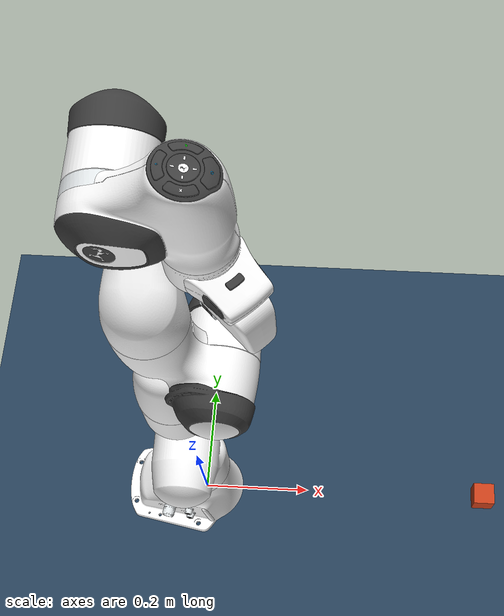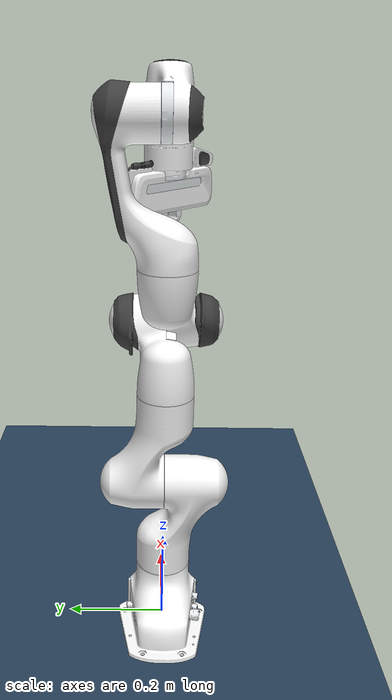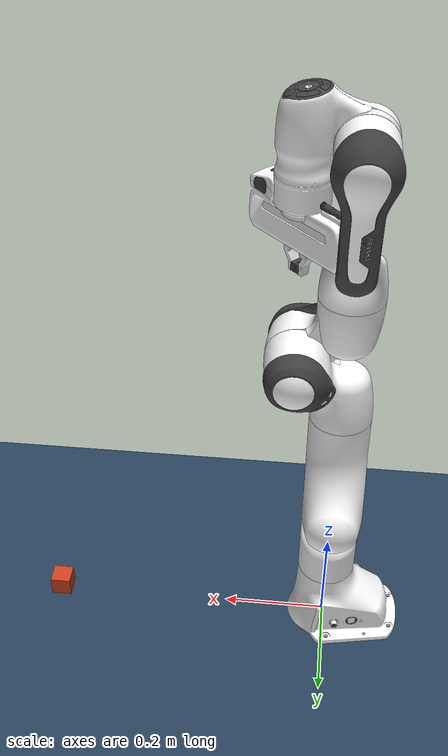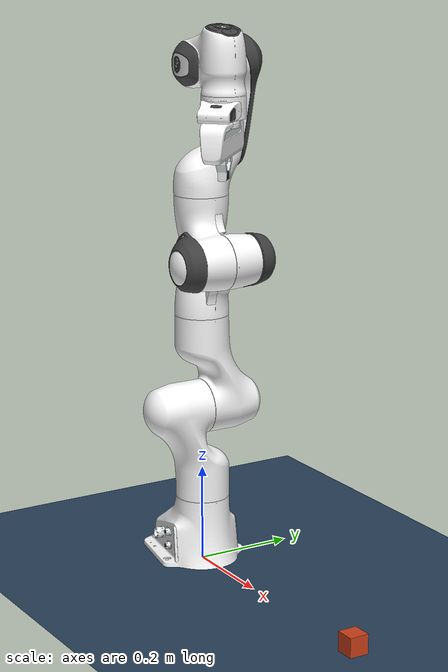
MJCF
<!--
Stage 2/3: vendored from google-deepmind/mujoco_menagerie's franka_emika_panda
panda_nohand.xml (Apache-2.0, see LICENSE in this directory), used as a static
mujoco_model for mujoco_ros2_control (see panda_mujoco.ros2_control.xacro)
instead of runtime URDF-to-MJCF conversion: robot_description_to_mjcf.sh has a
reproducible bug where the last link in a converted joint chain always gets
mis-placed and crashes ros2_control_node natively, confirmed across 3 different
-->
<mujoco model="panda">
  <compiler angle="radian" meshdir="assets" autolimits="true"/>

  <option integrator="implicitfast" impratio="10"/>

  <statistic center="0.3 0 0.3" extent="1.2"/>

  <visual>
    <headlight diffuse="0.6 0.6 0.6" ambient="0.1 0.1 0.1" specular="0 0 0"/>
    <rgba haze="0.15 0.25 0.35 1"/>
    <global azimuth="120" elevation="-20"/>
  </visual>

  <default>
    <default class="panda">
      <material specular="0.5" shininess="0.25"/>
      <joint armature="0.1" damping="1" axis="0 0 1" range="-2.8973 2.8973"/>
      <general dyntype="none" biastype="affine" ctrlrange="-2.8973 2.8973" forcerange="-87 87"/>
      <default class="finger">
        <joint axis="0 1 0" type="slide" range="0 0.04"/>
      </default>

      <default class="panda/visual">
        <geom type="mesh" contype="0" conaffinity="0" group="2"/>
      </default>
      <default class="panda/collision">
        <geom type="mesh" group="3" conaffinity="0"/>
        <default class="panda/fingertip_pad_collision_1">
          <geom type="box" size="0.0085 0.004 0.0085" pos="0 0.0055 0.0445"/>
        </default>
        <default class="panda/fingertip_pad_collision_2">
          <geom type="box" size="0.003 0.002 0.003" pos="0.0055 0.002 0.05"/>
        </default>
        <default class="panda/fingertip_pad_collision_3">
          <geom type="box" size="0.003 0.002 0.003" pos="-0.0055 0.002 0.05"/>
        </default>
        <default class="panda/fingertip_pad_collision_4">
          <geom type="box" size="0.003 0.002 0.0035" pos="0.0055 0.002 0.0395"/>
        </default>
        <default class="panda/fingertip_pad_collision_5">
          <geom type="box" size="0.003 0.002 0.0035" pos="-0.0055 0.002 0.0395"/>
        </default>
      </default>
      <site size="0.001" rgba="0.5 0.5 0.5 0.3" group="4"/>
    </default>
  </default>

  <asset>
    <texture type="skybox" builtin="gradient" rgb1="0.3 0.5 0.7" rgb2="0 0 0" width="512" height="3072"/>
    <texture type="2d" name="groundplane" builtin="checker" mark="edge" rgb1="0.2 0.3 0.4" rgb2="0.1 0.2 0.3"
      markrgb="0.8 0.8 0.8" width="300" height="300"/>
    <material name="groundplane" texture="groundplane" texuniform="true" texrepeat="5 5"/>

    <material class="panda" name="white" rgba="1 1 1 1"/>
    <material class="panda" name="off_white" rgba="0.901961 0.921569 0.929412 1"/>
    <material class="panda" name="dark_grey" rgba="0.25 0.25 0.25 1"/>
    <material class="panda" name="green" rgba="0 1 0 1"/>
    <material class="panda" name="light_blue" rgba="0.039216 0.541176 0.780392 1"/>

    <!-- Collision meshes -->
    <mesh name="link0_c" file="link0.stl"/>
    <mesh name="link1_c" file="link1.stl"/>
    <mesh name="link2_c" file="link2.stl"/>
    <mesh name="link3_c" file="link3.stl"/>
    <mesh name="link4_c" file="link4.stl"/>
    <mesh name="link5_c0" file="link5_collision_0.obj"/>
    <mesh name="link5_c1" file="link5_collision_1.obj"/>
    <mesh name="link5_c2" file="link5_collision_2.obj"/>
    <mesh name="link6_c" file="link6.stl"/>
    <mesh name="link7_c" file="link7.stl"/>
    <mesh name="hand_c" file="hand.stl"/>

    <!-- Visual meshes -->
    <mesh file="link0_0.obj"/>
    <mesh file="link0_1.obj"/>
    <mesh file="link0_2.obj"/>
    <mesh file="link0_3.obj"/>
    <mesh file="link0_4.obj"/>
    <mesh file="link0_5.obj"/>
    <mesh file="link0_7.obj"/>
    <mesh file="link0_8.obj"/>
    <mesh file="link0_9.obj"/>
    <mesh file="link0_10.obj"/>
    <mesh file="link0_11.obj"/>
    <mesh file="link1.obj"/>
    <mesh file="link2.obj"/>
    <mesh file="link3_0.obj"/>
    <mesh file="link3_1.obj"/>
    <mesh file="link3_2.obj"/>
    <mesh file="link3_3.obj"/>
    <mesh file="link4_0.obj"/>
    <mesh file="link4_1.obj"/>
    <mesh file="link4_2.obj"/>
    <mesh file="link4_3.obj"/>
    <mesh file="link5_0.obj"/>
    <mesh file="link5_1.obj"/>
    <mesh file="link5_2.obj"/>
    <mesh file="link6_0.obj"/>
    <mesh file="link6_1.obj"/>
    <mesh file="link6_2.obj"/>
    <mesh file="link6_3.obj"/>
    <mesh file="link6_4.obj"/>
    <mesh file="link6_5.obj"/>
    <mesh file="link6_6.obj"/>
    <mesh file="link6_7.obj"/>
    <mesh file="link6_8.obj"/>
    <mesh file="link6_9.obj"/>
    <mesh file="link6_10.obj"/>
    <mesh file="link6_11.obj"/>
    <mesh file="link6_12.obj"/>
    <mesh file="link6_13.obj"/>
    <mesh file="link6_14.obj"/>
    <mesh file="link6_15.obj"/>
    <mesh file="link6_16.obj"/>
    <mesh file="link7_0.obj"/>
    <mesh file="link7_1.obj"/>
    <mesh file="link7_2.obj"/>
    <mesh file="link7_3.obj"/>
    <mesh file="link7_4.obj"/>
    <mesh file="link7_5.obj"/>
    <mesh file="link7_6.obj"/>
    <mesh file="link7_7.obj"/>

    <mesh file="hand_0.obj"/>
    <mesh file="hand_1.obj"/>
    <mesh file="hand_2.obj"/>
    <mesh file="hand_3.obj"/>
    <mesh file="hand_4.obj"/>

    <mesh file="finger_0.obj"/>
    <mesh file="finger_1.obj"/>
  </asset>

  <worldbody>
    <light name="top" pos="0 0 2" mode="trackcom"/>
    <light name="scene" pos="0 0 1.5" dir="0 0 -1" directional="true"/>
    <geom name="floor" type="plane" size="0 0 0.05" material="groundplane"/>
    <body name="link0" childclass="panda">
      <inertial mass="0.629769" pos="-0.041018 -0.00014 0.049974"
        fullinertia="0.00315 0.00388 0.004285 8.2904e-7 0.00015 8.2299e-6"/>
      <geom mesh="link0_0" material="off_white" class="panda/visual"/>
      <geom mesh="link0_1" material="dark_grey" class="panda/visual"/>
      <geom mesh="link0_2" material="off_white" class="panda/visual"/>
      <geom mesh="link0_3" material="dark_grey" class="panda/visual"/>
      <geom mesh="link0_4" material="off_white" class="panda/visual"/>
      <geom mesh="link0_5" material="dark_grey" class="panda/visual"/>
      <geom mesh="link0_7" material="white" class="panda/visual"/>
      <geom mesh="link0_8" material="white" class="panda/visual"/>
      <geom mesh="link0_9" material="dark_grey" class="panda/visual"/>
      <geom mesh="link0_10" material="off_white" class="panda/visual"/>
      <geom mesh="link0_11" material="white" class="panda/visual"/>
      <geom mesh="link0_c" class="panda/collision"/>
      <body name="link1" pos="0 0 0.333">
        <inertial mass="4.970684" pos="0.003875 0.002081 -0.04762"
          fullinertia="0.70337 0.70661 0.0091170 -0.00013900 0.0067720 0.019169"/>
        <joint name="panda_joint1"/>
        <geom material="white" mesh="link1" class="panda/visual"/>
        <geom mesh="link1_c" class="panda/collision"/>
        <body name="link2" quat="1 -1 0 0">
          <inertial mass="0.646926" pos="-0.003141 -0.02872 0.003495"
            fullinertia="0.0079620 2.8110e-2 2.5995e-2 -3.925e-3 1.0254e-2 7.04e-4"/>
          <joint name="panda_joint2" range="-1.7628 1.7628"/>
          <geom material="white" mesh="link2" class="panda/visual"/>
          <geom mesh="link2_c" class="panda/collision"/>
          <body name="link3" pos="0 -0.316 0" quat="1 1 0 0">
            <joint name="panda_joint3"/>
            <inertial mass="3.228604" pos="2.7518e-2 3.9252e-2 -6.6502e-2"
              fullinertia="3.7242e-2 3.6155e-2 1.083e-2 -4.761e-3 -1.1396e-2 -1.2805e-2"/>
            <geom mesh="link3_0" material="white" class="panda/visual"/>
            <geom mesh="link3_1" material="white" class="panda/visual"/>
            <geom mesh="link3_2" material="white" class="panda/visual"/>
            <geom mesh="link3_3" material="dark_grey" class="panda/visual"/>
            <geom mesh="link3_c" class="panda/collision"/>
            <body name="link4" pos="0.0825 0 0" quat="1 1 0 0">
              <inertial mass="3.587895" pos="-5.317e-2 1.04419e-1 2.7454e-2"
                fullinertia="2.5853e-2 1.9552e-2 2.8323e-2 7.796e-3 -1.332e-3 8.641e-3"/>
              <joint name="panda_joint4" range="-3.0718 -0.0698"/>
              <geom mesh="link4_0" material="white" class="panda/visual"/>
              <geom mesh="link4_1" material="white" class="panda/visual"/>
              <geom mesh="link4_2" material="dark_grey" class="panda/visual"/>
              <geom mesh="link4_3" material="white" class="panda/visual"/>
              <geom mesh="link4_c" class="panda/collision"/>
              <body name="link5" pos="-0.0825 0.384 0" quat="1 -1 0 0">
                <inertial mass="1.225946" pos="-1.1953e-2 4.1065e-2 -3.8437e-2"
                  fullinertia="3.5549e-2 2.9474e-2 8.627e-3 -2.117e-3 -4.037e-3 2.29e-4"/>
                <joint name="panda_joint5"/>
                <geom mesh="link5_0" material="dark_grey" class="panda/visual"/>
                <geom mesh="link5_1" material="white" class="panda/visual"/>
                <geom mesh="link5_2" material="white" class="panda/visual"/>
                <geom mesh="link5_c0" class="panda/collision"/>
                <geom mesh="link5_c1" class="panda/collision"/>
                <geom mesh="link5_c2" class="panda/collision"/>
                <body name="link6" quat="1 1 0 0">
                  <inertial mass="1.666555" pos="6.0149e-2 -1.4117e-2 -1.0517e-2"
                    fullinertia="1.964e-3 4.354e-3 5.433e-3 1.09e-4 -1.158e-3 3.41e-4"/>
                  <joint name="panda_joint6" range="-0.0175 3.7525"/>
                  <geom mesh="link6_0" material="off_white" class="panda/visual"/>
                  <geom mesh="link6_1" material="white" class="panda/visual"/>
                  <geom mesh="link6_2" material="dark_grey" class="panda/visual"/>
                  <geom mesh="link6_3" material="white" class="panda/visual"/>
                  <geom mesh="link6_4" material="white" class="panda/visual"/>
                  <geom mesh="link6_5" material="white" class="panda/visual"/>
                  <geom mesh="link6_6" material="white" class="panda/visual"/>
                  <geom mesh="link6_7" material="light_blue" class="panda/visual"/>
                  <geom mesh="link6_8" material="light_blue" class="panda/visual"/>
                  <geom mesh="link6_9" material="dark_grey" class="panda/visual"/>
                  <geom mesh="link6_10" material="dark_grey" class="panda/visual"/>
                  <geom mesh="link6_11" material="white" class="panda/visual"/>
                  <geom mesh="link6_12" material="green" class="panda/visual"/>
                  <geom mesh="link6_13" material="white" class="panda/visual"/>
                  <geom mesh="link6_14" material="dark_grey" class="panda/visual"/>
                  <geom mesh="link6_15" material="dark_grey" class="panda/visual"/>
                  <geom mesh="link6_16" material="white" class="panda/visual"/>
                  <geom mesh="link6_c" class="panda/collision"/>
                  <body name="link7" pos="0.088 0 0" quat="1 1 0 0">
                    <inertial mass="7.35522e-01" pos="1.0517e-2 -4.252e-3 6.1597e-2"
                      fullinertia="1.2516e-2 1.0027e-2 4.815e-3 -4.28e-4 -1.196e-3 -7.41e-4"/>
                    <joint name="panda_joint7"/>
                    <geom mesh="link7_0" material="white" class="panda/visual"/>
                    <geom mesh="link7_1" material="dark_grey" class="panda/visual"/>
                    <geom mesh="link7_2" material="dark_grey" class="panda/visual"/>
                    <geom mesh="link7_3" material="dark_grey" class="panda/visual"/>
                    <geom mesh="link7_4" material="dark_grey" class="panda/visual"/>
                    <geom mesh="link7_5" material="dark_grey" class="panda/visual"/>
                    <geom mesh="link7_6" material="dark_grey" class="panda/visual"/>
                    <geom mesh="link7_7" material="white" class="panda/visual"/>
                    <geom mesh="link7_c" class="panda/collision"/>
                    <body name="attachment" pos="0 0 0.107" quat="0.3826834 0 0 0.9238795">
                      <site name="attachment_site"/>
                    </body>
                    <body name="panda_hand" pos="0 0 0.107" quat="0.9238795 0 0 -0.3826834">
                      <inertial pos="-0.01 0 0.03" mass="0.73" diaginertia="0.001 0.0025 0.0017"/>
                      <geom mesh="hand_0" material="off_white" class="panda/visual"/>
                      <geom mesh="hand_1" material="dark_grey" class="panda/visual"/>
                      <geom mesh="hand_2" material="dark_grey" class="panda/visual"/>
                      <geom mesh="hand_3" material="white" class="panda/visual"/>
                      <geom mesh="hand_4" material="off_white" class="panda/visual"/>
                      <geom mesh="hand_c" class="panda/collision"/>
                      <body name="panda_leftfinger" pos="0 0 0.0584">
                        <inertial pos="0 0 0" mass="0.015" diaginertia="2.375e-06 2.375e-06 7.5e-07"/>
                        <joint name="panda_finger_joint1" class="finger"/>
                        <geom mesh="finger_0" material="off_white" class="panda/visual"/>
                        <geom mesh="finger_1" material="dark_grey" class="panda/visual"/>
                        <geom mesh="finger_0" class="panda/collision"/>
                        <geom class="panda/fingertip_pad_collision_1"/>
                        <geom class="panda/fingertip_pad_collision_2"/>
                        <geom class="panda/fingertip_pad_collision_3"/>
                        <geom class="panda/fingertip_pad_collision_4"/>
                        <geom class="panda/fingertip_pad_collision_5"/>
                      </body>
                      <body name="panda_rightfinger" pos="0 0 0.0584" quat="0 0 0 1">
                        <inertial pos="0 0 0" mass="0.015" diaginertia="2.375e-06 2.375e-06 7.5e-07"/>
                        <joint name="panda_finger_joint2" class="finger"/>
                        <geom mesh="finger_0" material="off_white" class="panda/visual"/>
                        <geom mesh="finger_1" material="dark_grey" class="panda/visual"/>
                        <geom mesh="finger_0" class="panda/collision"/>
                        <geom class="panda/fingertip_pad_collision_1"/>
                        <geom class="panda/fingertip_pad_collision_2"/>
                        <geom class="panda/fingertip_pad_collision_3"/>
                        <geom class="panda/fingertip_pad_collision_4"/>
                        <geom class="panda/fingertip_pad_collision_5"/>
                      </body>
                    </body>
                  </body>
                </body>
              </body>
            </body>
          </body>
        </body>
      </body>
    </body>
    <body name="grasp_object" pos="0.55 0 0.02">
      <freejoint/>
      <geom type="box" size="0.02 0.02 0.02" density="1000" friction="1 0.005 0.0001" rgba="0.8 0.25 0.1 1"/>
    </body>
  </worldbody>

  <actuator>
    <motor name="panda_joint1_torque" joint="panda_joint1" gear="1" ctrlrange="-87 87"/>
    <motor name="panda_joint2_torque" joint="panda_joint2" gear="1" ctrlrange="-87 87"/>
    <motor name="panda_joint3_torque" joint="panda_joint3" gear="1" ctrlrange="-87 87"/>
    <motor name="panda_joint4_torque" joint="panda_joint4" gear="1" ctrlrange="-87 87"/>
    <motor name="panda_joint5_torque" joint="panda_joint5" gear="1" ctrlrange="-12 12"/>
    <motor name="panda_joint6_torque" joint="panda_joint6" gear="1" ctrlrange="-12 12"/>
    <motor name="panda_joint7_torque" joint="panda_joint7" gear="1" ctrlrange="-12 12"/>

    <position name="panda_finger_joint1_position" joint="panda_finger_joint1" kp="200" kv="3" ctrlrange="0 0.04" forcerange="-20 20"/>
  </actuator>

  <equality>
    <joint joint1="panda_finger_joint1" joint2="panda_finger_joint2" solimp="0.95 0.99 0.001" solref="0.005 1"/>
  </equality>

  <contact>
    <exclude body1="link0" body2="link1"/>
    <exclude body1="link1" body2="link2"/>
    <exclude body1="link2" body2="link3"/>
    <exclude body1="link3" body2="link4"/>
    <exclude body1="link4" body2="link5"/>
    <exclude body1="link5" body2="link6"/>
    <exclude body1="link6" body2="link7"/>

    <exclude body1="link0" body2="link2"/>
    <exclude body1="link0" body2="link3"/>
    <exclude body1="link0" body2="link4"/>
    <exclude body1="link1" body2="link3"/>
    <exclude body1="link1" body2="link4"/>
    <exclude body1="link2" body2="link4"/>
    <exclude body1="link2" body2="link6"/>
    <exclude body1="link3" body2="link5"/>
    <exclude body1="link3" body2="link6"/>
    <exclude body1="link3" body2="link7"/>
    <exclude body1="link4" body2="link6"/>
    <exclude body1="link4" body2="link7"/>

    <exclude body1="panda_hand" body2="link3"/>
    <exclude body1="panda_hand" body2="link4"/>
    <exclude body1="panda_hand" body2="link6"/>
    <exclude body1="panda_hand" body2="link7"/>

    <exclude body1="panda_leftfinger" body2="link3"/>
    <exclude body1="panda_leftfinger" body2="link4"/>
    <exclude body1="panda_leftfinger" body2="link6"/>
    <exclude body1="panda_leftfinger" body2="link7"/>
    <exclude body1="panda_rightfinger" body2="link3"/>
    <exclude body1="panda_rightfinger" body2="link4"/>
    <exclude body1="panda_rightfinger" body2="link6"/>
    <exclude body1="panda_rightfinger" body2="link7"/>

    <exclude body1="panda_hand" body2="panda_leftfinger"/>
    <exclude body1="panda_hand" body2="panda_rightfinger"/>
    <exclude body1="panda_leftfinger" body2="panda_rightfinger"/>
  </contact>

  <keyframe>
    <key name="home" qpos="0 0 0 -1.57079 0 1.57079 -0.7853 0.04 0.04 0.55 0 0.02 1 0 0 0" ctrl="0 0 0 0 0 0 0 0.04"/>
  </keyframe>
</mujoco>
